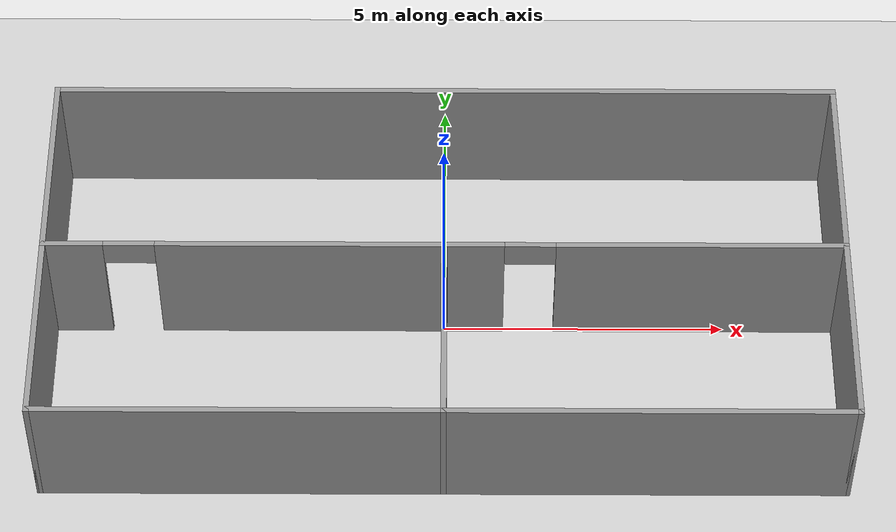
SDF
<?xml version='1.0' encoding='utf-8'?>
<sdf version="1.6">
  <world name="rooms_small">
    <gravity>0 0 -9.8</gravity>
    <physics default="0" name="default_physics" type="ode">
      <max_step_size>0.001</max_step_size>
      <real_time_factor>1</real_time_factor>
      <real_time_update_rate>1000</real_time_update_rate>
    </physics>

    <include>
      <uri>model://sun</uri>
    </include>

    <include>
      <uri>model://ground_plane</uri>
    </include>

    <include>
      <uri>model://rooms_small</uri>
      <static>true</static>
      <pose>0 0 0 0 0 0</pose>
    </include>

  </world>
</sdf>

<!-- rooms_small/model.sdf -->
<sdf version='1.7'>
  <model name='rooms_small'>
    <pose>7 3.5 0 0 -0 0</pose>
    <link name='Wall_0'>
      <pose>0 0 0 0 -0 0</pose>
      <visual name='Wall_0_Visual_0'>
        <pose>-6.5 0 1.25 0 -0 0</pose>
        <geometry>
          <box>
            <size>1.1 0.1 2.5</size>
          </box>
        </geometry>
        <material>
          <script>
            <uri>file://media/materials/scripts/gazebo.material</uri>
            <name>Gazebo/Grey</name>
          </script>
          <ambient>1 1 1 1</ambient>
        </material>
        <meta>
          <layer>0</layer>
        </meta>
      </visual>
      <collision name='Wall_0_Collision_0'>
        <geometry>
          <box>
            <size>1.1 0.1 2.5</size>
          </box>
        </geometry>
        <pose>-6.5 0 1.25 0 -0 0</pose>
      </collision>
      <visual name='Wall_0_Visual_1'>
        <pose>-2 0 1.25 0 -0 0</pose>
        <geometry>
          <box>
            <size>6.1 0.1 2.5</size>
          </box>
        </geometry>
        <material>
          <script>
            <uri>file://media/materials/scripts/gazebo.material</uri>
            <name>Gazebo/Grey</name>
          </script>
          <ambient>1 1 1 1</ambient>
        </material>
        <meta>
          <layer>0</layer>
        </meta>
      </visual>
      <collision name='Wall_0_Collision_1'>
        <geometry>
          <box>
            <size>6.1 0.1 2.5</size>
          </box>
        </geometry>
        <pose>-2 0 1.25 0 -0 0</pose>
      </collision>
      <visual name='Wall_0_Visual_2'>
        <pose>4.5 0 1.25 0 -0 0</pose>
        <geometry>
          <box>
            <size>5.1 0.1 2.5</size>
          </box>
        </geometry>
        <material>
          <script>
            <uri>file://media/materials/scripts/gazebo.material</uri>
            <name>Gazebo/Grey</name>
          </script>
          <ambient>1 1 1 1</ambient>
        </material>
        <meta>
          <layer>0</layer>
        </meta>
      </visual>
      <collision name='Wall_0_Collision_2'>
        <geometry>
          <box>
            <size>5.1 0.1 2.5</size>
          </box>
        </geometry>
        <pose>4.5 0 1.25 0 -0 0</pose>
      </collision>
      <visual name='Wall_0_Visual_3'>
        <pose>-5.5 0 2.25 0 -0 0</pose>
        <geometry>
          <box>
            <size>0.9 0.1 0.5</size>
          </box>
        </geometry>
        <material>
          <script>
            <uri>file://media/materials/scripts/gazebo.material</uri>
            <name>Gazebo/Grey</name>
          </script>
          <ambient>1 1 1 1</ambient>
        </material>
        <meta>
          <layer>0</layer>
        </meta>
      </visual>
      <collision name='Wall_0_Collision_3'>
        <geometry>
          <box>
            <size>0.9 0.1 0.5</size>
          </box>
        </geometry>
        <pose>-5.5 0 2.25 0 -0 0</pose>
      </collision>
      <visual name='Wall_0_Visual_4'>
        <pose>1.5 0 2.25 0 -0 0</pose>
        <geometry>
          <box>
            <size>0.9 0.1 0.5</size>
          </box>
        </geometry>
        <material>
          <script>
            <uri>file://media/materials/scripts/gazebo.material</uri>
            <name>Gazebo/Grey</name>
          </script>
          <ambient>1 1 1 1</ambient>
        </material>
        <meta>
          <layer>0</layer>
        </meta>
      </visual>
      <collision name='Wall_0_Collision_4'>
        <geometry>
          <box>
            <size>0.9 0.1 0.5</size>
          </box>
        </geometry>
        <pose>1.5 0 2.25 0 -0 0</pose>
      </collision>
    </link>
    <link name='Wall_11'>
      <collision name='Wall_11_Collision'>
        <geometry>
          <box>
            <size>14.1004 0.1 2.5</size>
          </box>
        </geometry>
        <pose>0 0 1.25 0 -0 0</pose>
      </collision>
      <visual name='Wall_11_Visual'>
        <pose>0 0 1.25 0 -0 0</pose>
        <geometry>
          <box>
            <size>14.1004 0.1 2.5</size>
          </box>
        </geometry>
        <material>
          <script>
            <uri>file://media/materials/scripts/gazebo.material</uri>
            <name>Gazebo/Grey</name>
          </script>
          <ambient>1 1 1 1</ambient>
        </material>
        <meta>
          <layer>0</layer>
        </meta>
      </visual>
      <pose>0 -3.5 0 0 -0 0</pose>
    </link>
    <link name='Wall_3'>
      <collision name='Wall_3_Collision'>
        <geometry>
          <box>
            <size>3.6 0.1 2.5</size>
          </box>
        </geometry>
        <pose>0 0 1.25 0 -0 0</pose>
      </collision>
      <visual name='Wall_3_Visual'>
        <pose>0 0 1.25 0 -0 0</pose>
        <geometry>
          <box>
            <size>3.6 0.1 2.5</size>
          </box>
        </geometry>
        <material>
          <script>
            <uri>file://media/materials/scripts/gazebo.material</uri>
            <name>Gazebo/Grey</name>
          </script>
          <ambient>1 1 1 1</ambient>
        </material>
        <meta>
          <layer>0</layer>
        </meta>
      </visual>
      <pose>0 -1.75 0 0 -0 -1.5708</pose>
    </link>
    <link name='Wall_5'>
      <collision name='Wall_5_Collision'>
        <geometry>
          <box>
            <size>7.1 0.1 2.5</size>
          </box>
        </geometry>
        <pose>0 0 1.25 0 -0 0</pose>
      </collision>
      <visual name='Wall_5_Visual'>
        <pose>0 0 1.25 0 -0 0</pose>
        <geometry>
          <box>
            <size>7.1 0.1 2.5</size>
          </box>
        </geometry>
        <material>
          <script>
            <uri>file://media/materials/scripts/gazebo.material</uri>
            <name>Gazebo/Grey</name>
          </script>
          <ambient>1 1 1 1</ambient>
        </material>
        <meta>
          <layer>0</layer>
        </meta>
      </visual>
      <pose>-7 0 0 0 -0 1.5708</pose>
    </link>
    <link name='Wall_7'>
      <collision name='Wall_7_Collision'>
        <geometry>
          <box>
            <size>14.1 0.1 2.5</size>
          </box>
        </geometry>
        <pose>0 0 1.25 0 -0 0</pose>
      </collision>
      <visual name='Wall_7_Visual'>
        <pose>0 0 1.25 0 -0 0</pose>
        <geometry>
          <box>
            <size>14.1 0.1 2.5</size>
          </box>
        </geometry>
        <material>
          <script>
            <uri>file://media/materials/scripts/gazebo.material</uri>
            <name>Gazebo/Grey</name>
          </script>
          <ambient>1 1 1 1</ambient>
        </material>
        <meta>
          <layer>0</layer>
        </meta>
      </visual>
      <pose>0 3.5 0 0 -0 0</pose>
    </link>
    <link name='Wall_9'>
      <collision name='Wall_9_Collision'>
        <geometry>
          <box>
            <size>7.1 0.1 2.5</size>
          </box>
        </geometry>
        <pose>0 0 1.25 0 -0 0</pose>
      </collision>
      <visual name='Wall_9_Visual'>
        <pose>0 0 1.25 0 -0 0</pose>
        <geometry>
          <box>
            <size>7.1 0.1 2.5</size>
          </box>
        </geometry>
        <material>
          <script>
            <uri>file://media/materials/scripts/gazebo.material</uri>
            <name>Gazebo/Grey</name>
          </script>
          <ambient>1 1 1 1</ambient>
        </material>
        <meta>
          <layer>0</layer>
        </meta>
      </visual>
      <pose>7 0 0 0 -0 -1.5708</pose>
    </link>
    <static>1</static>
  </model>
</sdf>
